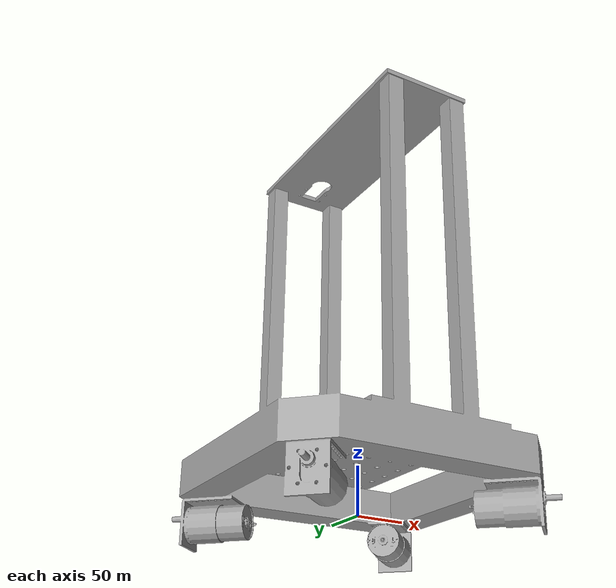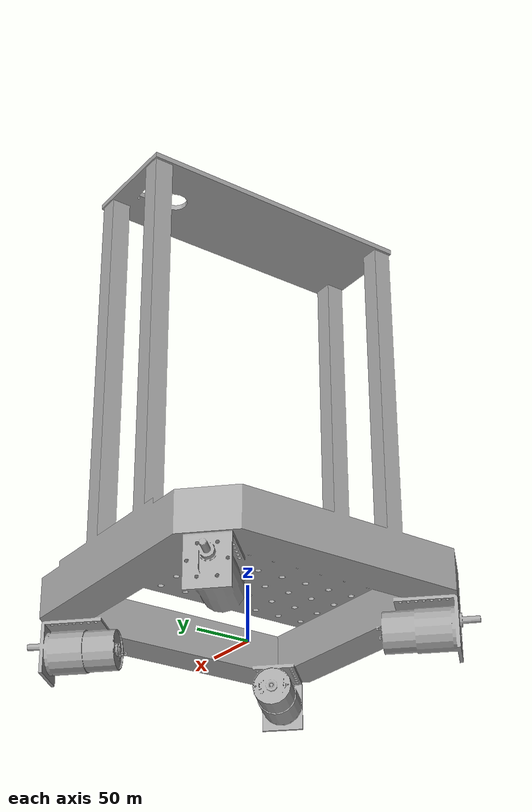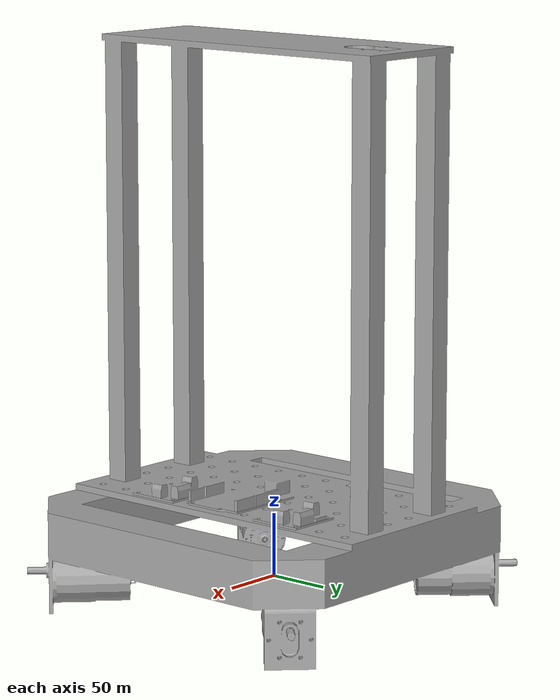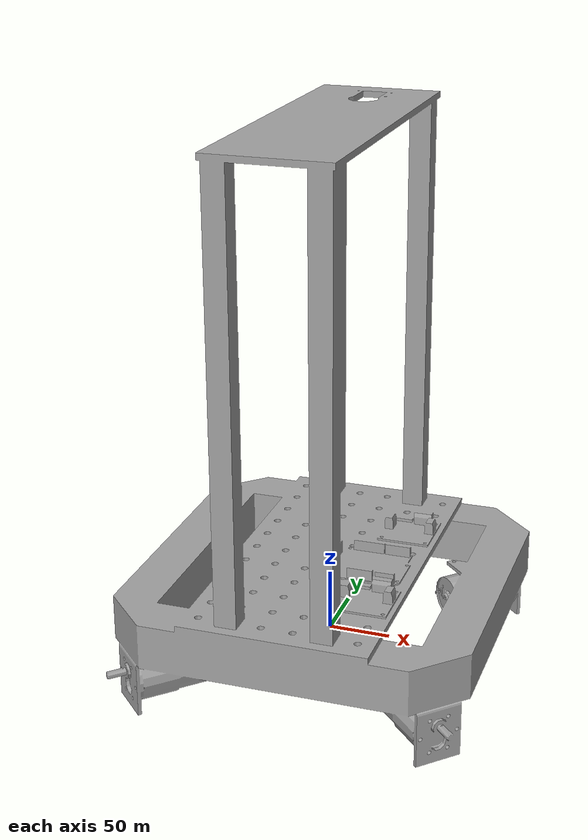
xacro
<?xml version="1.0"?>

<robot xmlns:xacro="http://www.ros.org/wiki/xacro" name="omnibot">
    <xacro:include filename="$(find omnibot_description)/urdf/omnibot_gazebo.xacro"/>
    <xacro:include filename="$(find omnibot_description)/urdf/omnibot_ros2_control.xacro"/>

    <link name="base_footprint"></link>
    <joint name="base_footprint_to_base" type="fixed">
        <parent link="base_footprint"/>
        <child link="body"/>
        <origin rpy="0.0 0 0" xyz="0 0 0"/>
    </joint>
    <link name="body">
        <visual>
            <origin xyz="0 0 0" rpy="0 -0 0"/>
            <geometry>
                <mesh filename="package://omnibot_description/meshes/body.stl"/>
            </geometry>
            <material name="body_material">
                <color rgba="0.64705882352941179736 0.64705882352941179736 0.64705882352941179736 1.0"/>
            </material>
        </visual>
        <collision>
            <origin xyz="0 0 0" rpy="0 -0 0"/>
            <geometry>
                <mesh filename="package://omnibot_description/meshes/body.stl"/>
            </geometry>
        </collision>
        <inertial>
            <origin xyz="7.1233155389013862202e-17 1.0317988916383663065e-16 0.021568658951857794942" rpy="0 0 0"/>
            <mass value="0.38994095962530694877"/>
            <inertia ixx="0.0016696381826671006111" ixy="0" ixz="0" iyy="0.0016696381826670969248" iyz="0"
                     izz="0.0027394769035442643849"/>
        </inertial>
    </link>

    <link name="wheel1">
        <visual>
            <origin xyz="2.0017602159194680667e-11 -1.9338658017376084286e-11 -0.012000000000003160916"
                    rpy="3.2665940403736872889e-17 1.6961582288539999394e-28 1.6530528052917844781e-44"/>
            <geometry>
                <mesh filename="package://omnibot_description/meshes/wheel1.stl"/>
            </geometry>
            <material name="wheel1_material">
                <color rgba="0.91764705882352937127 0.91764705882352937127 0.91764705882352937127 1.0"/>
            </material>
        </visual>
        <collision>
            <origin xyz="2.0017602159194680667e-11 -1.9338658017376084286e-11 -0.012000000000003160916"
                    rpy="3.2665940403736872889e-17 1.6961582288539999394e-28 1.6530528052917844781e-44"/>
            <geometry>
                <mesh filename="package://omnibot_description/meshes/wheel1.stl"/>
            </geometry>
        </collision>
        <inertial>
            <origin xyz="0 0 0" rpy="0 0 0"/>
            <mass value="0"/>
            <inertia ixx="0" ixy="0" ixz="0" iyy="0" iyz="0" izz="0"/>
        </inertial>
    </link>

    <link name="roller_1">
        <visual>
            <origin xyz="-1.3877787807814456755e-17 0 -3.4694469519536141888e-18"
                    rpy="4.8313597930808343815e-17 1.0202896120757522617e-17 -1.4240636807574894245e-17"/>
            <geometry>
                <mesh filename="package://omnibot_description/meshes/roller.stl"/>
            </geometry>
            <material name="roller_material">
                <color rgba="0.098039215686274508443 0.098039215686274508443 0.098039215686274508443 1.0"/>
            </material>
        </visual>
        <collision>
            <origin xyz="-1.3877787807814456755e-17 0 -3.4694469519536141888e-18"
                    rpy="4.8313597930808343815e-17 1.0202896120757522617e-17 -1.4240636807574894245e-17"/>
            <geometry>
                <mesh filename="package://omnibot_description/meshes/roller.stl"/>
            </geometry>
        </collision>
        <inertial>
            <origin xyz="4.0756108237236490763e-11 8.4957103277464551344e-11 2.4283846002799543793e-11" rpy="0 0 0"/>
            <mass value="0.0037899803393768717423"/>
            <inertia ixx="1.8303635244743851546e-07" ixy="4.2716079441666248377e-16" ixz="-1.7514569914379778774e-15"
                     iyy="1.8303636075213789495e-07" iyz="-3.3429142817401113321e-15" izz="9.80970620806389343e-08"/>
        </inertial>
    </link>

    <joint name="wheel1_roller1" type="continuous">
        <origin xyz="0.021063493153990586748 0.020580326725357138418 -0.025199999101464906626"
                rpy="1.57079632679489678 -0.63003667891428682957 0.79587032999727236326"/>
        <parent link="wheel1"/>
        <child link="roller_1"/>
        <axis xyz="0 0 1"/>
        <limit effort="1" velocity="20"/>
        <joint_properties friction="0.0"/>
    </joint>

    <link name="roller_2">
        <visual>
            <origin xyz="2.7755575615628913511e-17 1.3877787807814456755e-17 -3.4694469519536141888e-18"
                    rpy="-1.8534098844522500887e-18 1.0604467117226704221e-17 -4.5203913841863426438e-18"/>
            <geometry>
                <mesh filename="package://omnibot_description/meshes/roller.stl"/>
            </geometry>
            <material name="roller_material">
                <color rgba="0.098039215686274508443 0.098039215686274508443 0.098039215686274508443 1.0"/>
            </material>
        </visual>
        <collision>
            <origin xyz="2.7755575615628913511e-17 1.3877787807814456755e-17 -3.4694469519536141888e-18"
                    rpy="-1.8534098844522500887e-18 1.0604467117226704221e-17 -4.5203913841863426438e-18"/>
            <geometry>
                <mesh filename="package://omnibot_description/meshes/roller.stl"/>
            </geometry>
        </collision>
        <inertial>
            <origin xyz="4.0756149870599927131e-11 8.4957117155252333309e-11 2.4283846002799540562e-11" rpy="0 0 0"/>
            <mass value="0.0037899803393768717423"/>
            <inertia ixx="1.8303635244743851546e-07" ixy="4.2716080718326359577e-16" ixz="-1.7514569788113203449e-15"
                     iyy="1.8303636075213773613e-07" iyz="-3.3429142996340814812e-15" izz="9.80970620806389343e-08"/>
        </inertial>
    </link>

    <joint name="wheel1_roller2" type="continuous">
        <origin xyz="-0.0072913391920867709484 0.028531683499468909332 -0.02519999910146487887"
                rpy="1.570796326794896558 -1.0642465970120684737 1.8430678811938705497"/>
        <parent link="wheel1"/>
        <child link="roller_2"/>
        <axis xyz="0 0 1"/>
        <limit effort="1" velocity="20"/>
        <joint_properties friction="0.0"/>
    </joint>

    <link name="roller_3">
        <visual>
            <origin xyz="2.7755575615628913511e-17 6.9388939039072283776e-18 8.6736173798840354721e-19"
                    rpy="5.0301014281968001418e-17 3.251271293192914257e-17 6.8406319465281909424e-17"/>
            <geometry>
                <mesh filename="package://omnibot_description/meshes/roller.stl"/>
            </geometry>
            <material name="roller_material">
                <color rgba="0.098039215686274508443 0.098039215686274508443 0.098039215686274508443 1.0"/>
            </material>
        </visual>
        <collision>
            <origin xyz="2.7755575615628913511e-17 6.9388939039072283776e-18 8.6736173798840354721e-19"
                    rpy="5.0301014281968001418e-17 3.251271293192914257e-17 6.8406319465281909424e-17"/>
            <geometry>
                <mesh filename="package://omnibot_description/meshes/roller.stl"/>
            </geometry>
        </collision>
        <inertial>
            <origin xyz="4.0756149870599927131e-11 8.4957110216358429402e-11 2.4283850339608240197e-11" rpy="0 0 0"/>
            <mass value="0.0037899803393768717423"/>
            <inertia ixx="1.8303635244743851546e-07" ixy="4.2716082470286377858e-16" ixz="-1.7514569839231208669e-15"
                     iyy="1.8303636075213778907e-07" iyz="-3.3429143052564406697e-15" izz="9.809706208063898724e-08"/>
        </inertial>
    </link>

    <joint name="wheel1_roller3" type="continuous">
        <origin xyz="-0.02835483232605973819 0.0079513567547731638097 -0.025199999101464934381"
                rpy="1.570796326794896558 0.97038694955970605793 2.8902654323904672928"/>
        <parent link="wheel1"/>
        <child link="roller_3"/>
        <axis xyz="0 0 1"/>
        <limit effort="1" velocity="20"/>
        <joint_properties friction="0.0"/>
    </joint>

    <link name="roller_4">
        <visual>
            <origin xyz="-1.3877787807814456755e-17 0 -1.7347234759768070944e-18"
                    rpy="-8.2550672770337265537e-17 -3.1582354597863147868e-17 1.7399468565294474442e-17"/>
            <geometry>
                <mesh filename="package://omnibot_description/meshes/roller.stl"/>
            </geometry>
            <material name="roller_material">
                <color rgba="0.098039215686274508443 0.098039215686274508443 0.098039215686274508443 1.0"/>
            </material>
        </visual>
        <collision>
            <origin xyz="-1.3877787807814456755e-17 0 -1.7347234759768070944e-18"
                    rpy="-8.2550672770337265537e-17 -3.1582354597863147868e-17 1.7399468565294474442e-17"/>
            <geometry>
                <mesh filename="package://omnibot_description/meshes/roller.stl"/>
            </geometry>
        </collision>
        <inertial>
            <origin xyz="4.0756108237236497225e-11 8.4957103277464538419e-11 2.4283847737523010076e-11" rpy="0 0 0"/>
            <mass value="0.0037899803393768717423"/>
            <inertia ixx="1.8303635244743851546e-07" ixy="4.2716079610954383618e-16" ixz="-1.7514569719094518423e-15"
                     iyy="1.8303636075213778907e-07" iyz="-3.3429143185304307558e-15" izz="9.80970620806389343e-08"/>
        </inertial>
    </link>

    <joint name="wheel1_roller4" type="continuous">
        <origin xyz="-0.021063493113955417124 -0.020580326764034477527 -0.025199999101464934381"
                rpy="1.570796326794896558 0.63003667891428616343 -2.3457223235925215299"/>
        <parent link="wheel1"/>
        <child link="roller_4"/>
        <axis xyz="0 0 1"/>
        <limit effort="1" velocity="20"/>
        <joint_properties friction="0.0"/>
    </joint>

    <link name="roller_5">
        <visual>
            <origin xyz="0 -6.9388939039072283776e-18 3.4694469519536141888e-18"
                    rpy="3.3698767856153982616e-17 1.0604467117226704221e-17 1.9618948495536108714e-18"/>
            <geometry>
                <mesh filename="package://omnibot_description/meshes/roller.stl"/>
            </geometry>
            <material name="roller_material">
                <color rgba="0.098039215686274508443 0.098039215686274508443 0.098039215686274508443 1.0"/>
            </material>
        </visual>
        <collision>
            <origin xyz="0 -6.9388939039072283776e-18 3.4694469519536141888e-18"
                    rpy="3.3698767856153982616e-17 1.0604467117226704221e-17 1.9618948495536108714e-18"/>
            <geometry>
                <mesh filename="package://omnibot_description/meshes/roller.stl"/>
            </geometry>
        </collision>
        <inertial>
            <origin xyz="4.0756122115024311502e-11 8.4957096338570634512e-11 2.42838529416934477e-11" rpy="0 0 0"/>
            <mass value="0.0037899803393768717423"/>
            <inertia ixx="1.8303635244743851546e-07" ixy="4.2716080772658902975e-16" ixz="-1.7514569758691322535e-15"
                     iyy="1.8303636075213778907e-07" iyz="-3.3429142981308593003e-15" izz="9.80970620806389343e-08"/>
        </inertial>
    </link>

    <joint name="wheel1_roller5" type="continuous">
        <origin xyz="0.0072913392321219683279 -0.028531683538146258849 -0.025199999101464906626"
                rpy="1.57079632679489678 1.0642465970120684737 -1.2985247723959227883"/>
        <parent link="wheel1"/>
        <child link="roller_5"/>
        <axis xyz="0 0 1"/>
        <limit effort="1" velocity="20"/>
        <joint_properties friction="0.0"/>
    </joint>

    <link name="roller_6">
        <visual>
            <origin xyz="2.7755575615628913511e-17 -1.3877787807814456755e-17 8.6736173798840354721e-19"
                    rpy="1.1348307307387470587e-17 -2.4396012508985263894e-17 5.3536638798027002645e-17"/>
            <geometry>
                <mesh filename="package://omnibot_description/meshes/roller.stl"/>
            </geometry>
            <material name="roller_material">
                <color rgba="0.098039215686274508443 0.098039215686274508443 0.098039215686274508443 1.0"/>
            </material>
        </visual>
        <collision>
            <origin xyz="2.7755575615628913511e-17 -1.3877787807814456755e-17 8.6736173798840354721e-19"
                    rpy="1.1348307307387470587e-17 -2.4396012508985263894e-17 5.3536638798027002645e-17"/>
            <geometry>
                <mesh filename="package://omnibot_description/meshes/roller.stl"/>
            </geometry>
        </collision>
        <inertial>
            <origin xyz="4.0756149870599952981e-11 8.4957089399676704756e-11 2.4283850339608224041e-11" rpy="0 0 0"/>
            <mass value="0.0037899803393768717423"/>
            <inertia ixx="1.8303635244743851546e-07" ixy="4.2716086838070390269e-16" ixz="-1.7514569601315299549e-15"
                     iyy="1.8303636075213768319e-07" iyz="-3.3429142966299291546e-15" izz="9.8097062080638881361e-08"/>
        </inertial>
    </link>

    <joint name="wheel1_roller6" type="continuous">
        <origin xyz="0.028354832366094942508 -0.0079513567934505115925 -0.02519999910146487887"
                rpy="-1.57079632679489678 0.97038694955970650202 2.8902654323904677369"/>
        <parent link="wheel1"/>
        <child link="roller_6"/>
        <axis xyz="0 0 1"/>
        <limit effort="1" velocity="20"/>
        <joint_properties friction="0.0"/>
    </joint>

    <link name="roller_7">
        <visual>
            <origin xyz="-2.7755575615628913511e-17 1.3877787807814456755e-17 5.2041704279304212832e-18"
                    rpy="1.8576235027372254353e-17 1.0922784625315150076e-17 -1.2166858698432690386e-17"/>
            <geometry>
                <mesh filename="package://omnibot_description/meshes/roller.stl"/>
            </geometry>
            <material name="roller_material">
                <color rgba="0.098039215686274508443 0.098039215686274508443 0.098039215686274508443 1.0"/>
            </material>
        </visual>
        <collision>
            <origin xyz="-2.7755575615628913511e-17 1.3877787807814456755e-17 5.2041704279304212832e-18"
                    rpy="1.8576235027372254353e-17 1.0922784625315150076e-17 -1.2166858698432690386e-17"/>
            <geometry>
                <mesh filename="package://omnibot_description/meshes/roller.stl"/>
            </geometry>
        </collision>
        <inertial>
            <origin xyz="4.0756094359448695873e-11 8.4957117155252346234e-11 2.4283854676416913983e-11" rpy="0 0 0"/>
            <mass value="0.0037899803393768717423"/>
            <inertia ixx="1.8303635244743840958e-07" ixy="4.2716081650997702364e-16" ixz="-1.7514569755664719622e-15"
                     iyy="1.8303636075213778907e-07" iyz="-3.3429142902578996707e-15" izz="9.8097062080638907831e-08"/>
        </inertial>
    </link>

    <joint name="wheel1_roller7" type="continuous">
        <origin xyz="-0.021063534795607546934 0.020580268704085871723 -0.010000000513228704535"
                rpy="1.570796326794896558 0.99324701318442509823 -0.79586931499755353414"/>
        <parent link="wheel1"/>
        <child link="roller_7"/>
        <axis xyz="0 0 1"/>
        <limit effort="1" velocity="20"/>
        <joint_properties friction="0.0"/>
    </joint>

    <link name="roller_8">
        <visual>
            <origin xyz="0 0 -3.4694469519536141888e-18"
                    rpy="2.1516164593766474651e-17 -1.6403947067203599377e-17 1.5270275074116294873e-17"/>
            <geometry>
                <mesh filename="package://omnibot_description/meshes/roller.stl"/>
            </geometry>
            <material name="roller_material">
                <color rgba="0.098039215686274508443 0.098039215686274508443 0.098039215686274508443 1.0"/>
            </material>
        </visual>
        <collision>
            <origin xyz="0 0 -3.4694469519536141888e-18"
                    rpy="2.1516164593766474651e-17 -1.6403947067203599377e-17 1.5270275074116294873e-17"/>
            <geometry>
                <mesh filename="package://omnibot_description/meshes/roller.stl"/>
            </geometry>
        </collision>
        <inertial>
            <origin xyz="4.0756122115024311502e-11 8.4957103277464525495e-11 2.4283846002799543793e-11" rpy="0 0 0"/>
            <mass value="0.0037899803393768717423"/>
            <inertia ixx="1.8303635244743851546e-07" ixy="4.2716081033496638894e-16" ixz="-1.751456968894648513e-15"
                     iyy="1.8303636075213773613e-07" iyz="-3.3429142993485670817e-15" izz="9.80970620806389343e-08"/>
        </inertial>
    </link>

    <joint name="wheel1_roller8" type="continuous">
        <origin xyz="0.0072912681434010775255 0.028531690586202942267 -0.010000000513228732291"
                rpy="1.57079632679489678 0.98661181153161181534 -1.8430668661941522757"/>
        <parent link="wheel1"/>
        <child link="roller_8"/>
        <axis xyz="0 0 1"/>
        <limit effort="1" velocity="20"/>
        <joint_properties friction="0.0"/>
    </joint>

    <link name="roller_9">
        <visual>
            <origin xyz="1.7347234759768070944e-18 0 5.2041704279304212832e-18"
                    rpy="-5.7596626691863172499e-17 8.2240143318525463857e-18 1.595066194716236105e-17"/>
            <geometry>
                <mesh filename="package://omnibot_description/meshes/roller.stl"/>
            </geometry>
            <material name="roller_material">
                <color rgba="0.098039215686274508443 0.098039215686274508443 0.098039215686274508443 1.0"/>
            </material>
        </visual>
        <collision>
            <origin xyz="1.7347234759768070944e-18 0 5.2041704279304212832e-18"
                    rpy="-5.7596626691863172499e-17 8.2240143318525463857e-18 1.595066194716236105e-17"/>
            <geometry>
                <mesh filename="package://omnibot_description/meshes/roller.stl"/>
            </geometry>
        </collision>
        <inertial>
            <origin xyz="4.0756123849747787479e-11 8.4957103277464551344e-11 2.4283854676416913983e-11" rpy="0 0 0"/>
            <mass value="0.0037899803393768717423"/>
            <inertia ixx="1.8303635244743851546e-07" ixy="4.2716081033502718053e-16" ixz="-1.7514569749483572389e-15"
                     iyy="1.8303636075213789495e-07" iyz="-3.3429143212483492417e-15" izz="9.80970620806389343e-08"/>
        </inertial>
    </link>

    <joint name="wheel1_roller9" type="continuous">
        <origin xyz="0.028354802959026179782 0.0079514218627783975202 -0.010000000513228732291"
                rpy="-1.570796326794896558 3.3991120367872372081e-16 0.2513282361990437086"/>
        <parent link="wheel1"/>
        <child link="roller_9"/>
        <axis xyz="0 0 1"/>
        <limit effort="1" velocity="20"/>
        <joint_properties friction="0.0"/>
    </joint>

    <link name="roller_10">
        <visual>
            <origin xyz="1.3877787807814456755e-17 0 -1.7347234759768070944e-18"
                    rpy="-4.2387421735465487084e-17 1.0922784625315150076e-17 -9.3408557715693115825e-19"/>
            <geometry>
                <mesh filename="package://omnibot_description/meshes/roller.stl"/>
            </geometry>
            <material name="roller_material">
                <color rgba="0.098039215686274508443 0.098039215686274508443 0.098039215686274508443 1.0"/>
            </material>
        </visual>
        <collision>
            <origin xyz="1.3877787807814456755e-17 0 -1.7347234759768070944e-18"
                    rpy="-4.2387421735465487084e-17 1.0922784625315150076e-17 -9.3408557715693115825e-19"/>
            <geometry>
                <mesh filename="package://omnibot_description/meshes/roller.stl"/>
            </geometry>
        </collision>
        <inertial>
            <origin xyz="4.0756135992812112854e-11 8.4957103277464538419e-11 2.4283847737523013307e-11" rpy="0 0 0"/>
            <mass value="0.0037899803393768717423"/>
            <inertia ixx="1.8303635244743840958e-07" ixy="4.2716080673725795952e-16" ixz="-1.751456978441624626e-15"
                     iyy="1.8303636075213778907e-07" iyz="-3.3429143184311715435e-15" izz="9.80970620806389343e-08"/>
        </inertial>
    </link>

    <joint name="wheel1_roller10" type="continuous">
        <origin xyz="0.021063534835642744314 -0.02058026874276322124 -0.010000000513228760046"
                rpy="1.570796326794896558 -0.99324701318442520925 2.3457233385922400259"/>
        <parent link="wheel1"/>
        <child link="roller_10"/>
        <axis xyz="0 0 1"/>
        <limit effort="1" velocity="20"/>
        <joint_properties friction="0.0"/>
    </joint>

    <link name="roller_11">
        <visual>
            <origin xyz="2.7755575615628913511e-17 0 0"
                    rpy="-3.1584069176262389885e-17 1.4439558933859662794e-17 -6.895535096272413729e-18"/>
            <geometry>
                <mesh filename="package://omnibot_description/meshes/roller.stl"/>
            </geometry>
            <material name="roller_material">
                <color rgba="0.098039215686274508443 0.098039215686274508443 0.098039215686274508443 1.0"/>
            </material>
        </visual>
        <collision>
            <origin xyz="2.7755575615628913511e-17 0 0"
                    rpy="-3.1584069176262389885e-17 1.4439558933859662794e-17 -6.895535096272413729e-18"/>
            <geometry>
                <mesh filename="package://omnibot_description/meshes/roller.stl"/>
            </geometry>
        </collision>
        <inertial>
            <origin xyz="4.0756149870599920669e-11 8.4957103277464525495e-11 2.4283849472246489284e-11" rpy="0 0 0"/>
            <mass value="0.0037899803393768717423"/>
            <inertia ixx="1.8303635244743846252e-07" ixy="4.2716080796679899963e-16" ixz="-1.7514569732362549454e-15"
                     iyy="1.8303636075213773613e-07" iyz="-3.3429143086732145814e-15" izz="9.80970620806389343e-08"/>
        </inertial>
    </link>

    <joint name="wheel1_roller11" type="continuous">
        <origin xyz="-0.0072912681033658471863 -0.028531690624880284846 -0.010000000513228760046"
                rpy="1.57079632679489678 -0.98661181153161203738 1.2985257873956417285"/>
        <parent link="wheel1"/>
        <child link="roller_11"/>
        <axis xyz="0 0 1"/>
        <limit effort="1" velocity="20"/>
        <joint_properties friction="0.0"/>
    </joint>

    <link name="roller_12">
        <visual>
            <origin xyz="6.9388939039072283776e-18 0 1.3010426069826053208e-18"
                    rpy="-2.5118817816272677034e-18 -1.6181263758253363925e-18 9.6984171629855410221e-19"/>
            <geometry>
                <mesh filename="package://omnibot_description/meshes/roller.stl"/>
            </geometry>
            <material name="roller_material">
                <color rgba="0.098039215686274508443 0.098039215686274508443 0.098039215686274508443 1.0"/>
            </material>
        </visual>
        <collision>
            <origin xyz="6.9388939039072283776e-18 0 1.3010426069826053208e-18"
                    rpy="-2.5118817816272677034e-18 -1.6181263758253363925e-18 9.6984171629855410221e-19"/>
            <geometry>
                <mesh filename="package://omnibot_description/meshes/roller.stl"/>
            </geometry>
        </collision>
        <inertial>
            <origin xyz="4.0756129053918215409e-11 8.4957103277464525495e-11 2.4283850773289096267e-11" rpy="0 0 0"/>
            <mass value="0.0037899803393768717423"/>
            <inertia ixx="1.8303635244743851546e-07" ixy="4.2716081002971173128e-16" ixz="-1.7514569701489590459e-15"
                     iyy="1.8303636075213773613e-07" iyz="-3.3429143096072791413e-15" izz="9.8097062080638907831e-08"/>
        </inertial>
    </link>

    <joint name="wheel1_roller12" type="continuous">
        <origin xyz="-0.028354802918990978933 -0.0079514219014556724446 -0.010000000513228760046"
                rpy="1.57079632679489678 0.080869265947467836031 0.25132823619904404167"/>
        <parent link="wheel1"/>
        <child link="roller_12"/>
        <axis xyz="0 0 1"/>
        <limit effort="1" velocity="20"/>
        <joint_properties friction="0.0"/>
    </joint>

    <joint name="wheel12" type="continuous">
        <origin xyz="-0.10512583302491984583 -0.060694427995720917624 -0.018273297269524119146"
                rpy="-2.6179938779914952995 -1.570796326794896558 0"/>
        <parent link="body"/>
        <child link="wheel1"/>
        <axis xyz="0 0 1"/>
        <limit effort="1" velocity="20"/>
        <joint_properties friction="0.0"/>
    </joint>

    <link name="wheel1_2">
        <visual>
            <origin xyz="2.0017602159194680667e-11 -1.9338656401070191833e-11 -0.012000000000003147038"
                    rpy="1.7791772260398229456e-17 1.6961582288539999394e-28 1.4488936099950095181e-44"/>
            <geometry>
                <mesh filename="package://omnibot_description/meshes/wheel1.stl"/>
            </geometry>
            <material name="wheel1_material">
                <color rgba="0.91764705882352937127 0.91764705882352937127 0.91764705882352937127 1.0"/>
            </material>
        </visual>
        <collision>
            <origin xyz="2.0017602159194680667e-11 -1.9338656401070191833e-11 -0.012000000000003147038"
                    rpy="1.7791772260398229456e-17 1.6961582288539999394e-28 1.4488936099950095181e-44"/>
            <geometry>
                <mesh filename="package://omnibot_description/meshes/wheel1.stl"/>
            </geometry>
        </collision>
        <inertial>
            <origin xyz="0 0 0" rpy="0 0 0"/>
            <mass value="0"/>
            <inertia ixx="0" ixy="0" ixz="0" iyy="0" iyz="0" izz="0"/>
        </inertial>
    </link>

    <link name="roller_13">
        <visual>
            <origin xyz="0 3.0357660829594124152e-18 -1.1275702593849246114e-17"
                    rpy="1.4801210821466161925e-17 -3.2154076170664217384e-17 -7.4697855477196138984e-18"/>
            <geometry>
                <mesh filename="package://omnibot_description/meshes/roller.stl"/>
            </geometry>
            <material name="roller_material">
                <color rgba="0.098039215686274508443 0.098039215686274508443 0.098039215686274508443 1.0"/>
            </material>
        </visual>
        <collision>
            <origin xyz="0 3.0357660829594124152e-18 -1.1275702593849246114e-17"
                    rpy="1.4801210821466161925e-17 -3.2154076170664217384e-17 -7.4697855477196138984e-18"/>
            <geometry>
                <mesh filename="package://omnibot_description/meshes/roller.stl"/>
            </geometry>
        </collision>
        <inertial>
            <origin xyz="4.0756122115024311502e-11 8.4957106313230621379e-11 2.4283838196543905128e-11" rpy="0 0 0"/>
            <mass value="0.0037899803393768717423"/>
            <inertia ixx="1.8303635244743851546e-07" ixy="4.271608063406695779e-16" ixz="-1.7514569757286475648e-15"
                     iyy="1.8303636075213778907e-07" iyz="-3.3429143061564761368e-15" izz="9.809706208063898724e-08"/>
        </inertial>
    </link>

    <joint name="wheel2_roller1" type="continuous">
        <origin xyz="0.028354802959026179782 0.0079514218627784027243 -0.010000000513228718413"
                rpy="-1.5707963267948983344 1.4677789384896071656 0.251328236199043209"/>
        <parent link="wheel1_2"/>
        <child link="roller_13"/>
        <axis xyz="0 0 1"/>
        <limit effort="1" velocity="20"/>
        <joint_properties friction="0.0"/>
    </joint>

    <link name="roller_14">
        <visual>
            <origin xyz="2.7755575615628913511e-17 6.9388939039072283776e-18 -3.4694469519536141888e-18"
                    rpy="6.3092036550320982382e-17 -2.1227792715071714022e-17 6.3033836454500490105e-17"/>
            <geometry>
                <mesh filename="package://omnibot_description/meshes/roller.stl"/>
            </geometry>
            <material name="roller_material">
                <color rgba="0.098039215686274508443 0.098039215686274508443 0.098039215686274508443 1.0"/>
            </material>
        </visual>
        <collision>
            <origin xyz="2.7755575615628913511e-17 6.9388939039072283776e-18 -3.4694469519536141888e-18"
                    rpy="6.3092036550320982382e-17 -2.1227792715071714022e-17 6.3033836454500490105e-17"/>
            <geometry>
                <mesh filename="package://omnibot_description/meshes/roller.stl"/>
            </geometry>
        </collision>
        <inertial>
            <origin xyz="4.0756149870599927131e-11 8.4957110216358455251e-11 2.4283846002799547024e-11" rpy="0 0 0"/>
            <mass value="0.0037899803393768717423"/>
            <inertia ixx="1.8303635244743846252e-07" ixy="4.2716083935184793806e-16" ixz="-1.7514569722847129749e-15"
                     iyy="1.8303636075213789495e-07" iyz="-3.3429142963266586794e-15" izz="9.80970620806389343e-08"/>
        </inertial>
    </link>

    <joint name="wheel2_roller2" type="continuous">
        <origin xyz="0.007291268143401061913 0.028531690586202963084 -0.010000000513228746168"
                rpy="-1.5707963267948950037 -1.5491165045229537967 1.2985257873956401742"/>
        <parent link="wheel1_2"/>
        <child link="roller_14"/>
        <axis xyz="0 0 1"/>
        <limit effort="1" velocity="20"/>
        <joint_properties friction="0.0"/>
    </joint>

    <link name="roller_15">
        <visual>
            <origin xyz="-6.9388939039072283776e-18 0 -1.0408340855860842566e-17"
                    rpy="5.8370656148448449208e-17 -4.2840387043449254456e-17 -6.6244170159847150166e-17"/>
            <geometry>
                <mesh filename="package://omnibot_description/meshes/roller.stl"/>
            </geometry>
            <material name="roller_material">
                <color rgba="0.098039215686274508443 0.098039215686274508443 0.098039215686274508443 1.0"/>
            </material>
        </visual>
        <collision>
            <origin xyz="-6.9388939039072283776e-18 0 -1.0408340855860842566e-17"
                    rpy="5.8370656148448449208e-17 -4.2840387043449254456e-17 -6.6244170159847150166e-17"/>
            <geometry>
                <mesh filename="package://omnibot_description/meshes/roller.stl"/>
            </geometry>
        </collision>
        <inertial>
            <origin xyz="4.0756115176130414057e-11 8.4957103277464538419e-11 2.4283839063905643117e-11" rpy="0 0 0"/>
            <mass value="0.0037899803393768717423"/>
            <inertia ixx="1.8303635244743862134e-07" ixy="4.2716080207905990286e-16" ixz="-1.7514569756791652784e-15"
                     iyy="1.8303636075213778907e-07" iyz="-3.3429142742462246111e-15" izz="9.8097062080638907831e-08"/>
        </inertial>
    </link>

    <joint name="wheel2_roller3" type="continuous">
        <origin xyz="-0.021063534795607543465 0.020580268704085920295 -0.010000000513228690657"
                rpy="1.570796326794896558 -0.11503715271799130893 -0.79586931499755364516"/>
        <parent link="wheel1_2"/>
        <child link="roller_15"/>
        <axis xyz="0 0 1"/>
        <limit effort="1" velocity="20"/>
        <joint_properties friction="0.0"/>
    </joint>

    <link name="roller_16">
        <visual>
            <origin xyz="0 0 5.6378512969246230568e-18"
                    rpy="5.7268911782108241648e-17 -6.5981123338700148002e-17 -2.4567990984408565117e-17"/>
            <geometry>
                <mesh filename="package://omnibot_description/meshes/roller.stl"/>
            </geometry>
            <material name="roller_material">
                <color rgba="0.098039215686274508443 0.098039215686274508443 0.098039215686274508443 1.0"/>
            </material>
        </visual>
        <collision>
            <origin xyz="0 0 5.6378512969246230568e-18"
                    rpy="5.7268911782108241648e-17 -6.5981123338700148002e-17 -2.4567990984408565117e-17"/>
            <geometry>
                <mesh filename="package://omnibot_description/meshes/roller.stl"/>
            </geometry>
        </collision>
        <inertial>
            <origin xyz="4.075612211502430504e-11 8.4957103277464538419e-11 2.4283855110097799133e-11" rpy="0 0 0"/>
            <mass value="0.0037899803393768717423"/>
            <inertia ixx="1.8303635244743846252e-07" ixy="4.2716081034569765826e-16" ixz="-1.7514569501021677649e-15"
                     iyy="1.8303636075213778907e-07" iyz="-3.3429142936202540128e-15" izz="9.80970620806389343e-08"/>
        </inertial>
    </link>

    <joint name="wheel2_roller4" type="continuous">
        <origin xyz="-0.028354802918990982402 -0.0079514219014556759141 -0.010000000513228718413"
                rpy="1.5707963267948954478 1.4677789384896069436 0.25132823619904315349"/>
        <parent link="wheel1_2"/>
        <child link="roller_16"/>
        <axis xyz="0 0 1"/>
        <limit effort="1" velocity="20"/>
        <joint_properties friction="0.0"/>
    </joint>

    <link name="roller_17">
        <visual>
            <origin xyz="2.7755575615628913511e-17 0 0"
                    rpy="-2.6090100836621724074e-17 -3.0062742535195061203e-17 -1.3397760285791765036e-17"/>
            <geometry>
                <mesh filename="package://omnibot_description/meshes/roller.stl"/>
            </geometry>
            <material name="roller_material">
                <color rgba="0.098039215686274508443 0.098039215686274508443 0.098039215686274508443 1.0"/>
            </material>
        </visual>
        <collision>
            <origin xyz="2.7755575615628913511e-17 0 0"
                    rpy="-2.6090100836621724074e-17 -3.0062742535195061203e-17 -1.3397760285791765036e-17"/>
            <geometry>
                <mesh filename="package://omnibot_description/meshes/roller.stl"/>
            </geometry>
        </collision>
        <inertial>
            <origin xyz="4.0756149870599933593e-11 8.4957103277464551344e-11 2.4283849472246486053e-11" rpy="0 0 0"/>
            <mass value="0.0037899803393768717423"/>
            <inertia ixx="1.8303635244743851546e-07" ixy="4.271608144483480645e-16" ixz="-1.7514569676764786563e-15"
                     iyy="1.8303636075213789495e-07" iyz="-3.3429143174295631352e-15" izz="9.8097062080638907831e-08"/>
        </inertial>
    </link>

    <joint name="wheel2_roller5" type="continuous">
        <origin xyz="-0.0072912681033658575946 -0.028531690624880329948 -0.01000000051322880168"
                rpy="-1.5707963267948970021 1.5491165045229551289 -1.8430668661941511655"/>
        <parent link="wheel1_2"/>
        <child link="roller_17"/>
        <axis xyz="0 0 1"/>
        <limit effort="1" velocity="20"/>
        <joint_properties friction="0.0"/>
    </joint>

    <link name="roller_18">
        <visual>
            <origin xyz="4.7704895589362195096e-18 0 3.4694469519536141888e-18"
                    rpy="2.0941469269023866673e-17 -4.7155288459325374131e-17 -3.8742920020438843707e-17"/>
            <geometry>
                <mesh filename="package://omnibot_description/meshes/roller.stl"/>
            </geometry>
            <material name="roller_material">
                <color rgba="0.098039215686274508443 0.098039215686274508443 0.098039215686274508443 1.0"/>
            </material>
        </visual>
        <collision>
            <origin xyz="4.7704895589362195096e-18 0 3.4694469519536141888e-18"
                    rpy="2.0941469269023866673e-17 -4.7155288459325374131e-17 -3.8742920020438843707e-17"/>
            <geometry>
                <mesh filename="package://omnibot_description/meshes/roller.stl"/>
            </geometry>
        </collision>
        <inertial>
            <origin xyz="4.0756126885513876901e-11 8.4957103277464538419e-11 2.4283852941693450931e-11" rpy="0 0 0"/>
            <mass value="0.0037899803393768717423"/>
            <inertia ixx="1.8303635244743862134e-07" ixy="4.2716079749521277539e-16" ixz="-1.7514569692322610617e-15"
                     iyy="1.8303636075213778907e-07" iyz="-3.3429143059667460172e-15" izz="9.80970620806389343e-08"/>
        </inertial>
    </link>

    <joint name="wheel2_roller6" type="continuous">
        <origin xyz="0.021063534835642692272 -0.020580268742763259404 -0.010000000513228746168"
                rpy="1.570796326794896558 0.11503715271799126729 2.3457233385922395819"/>
        <parent link="wheel1_2"/>
        <child link="roller_18"/>
        <axis xyz="0 0 1"/>
        <limit effort="1" velocity="20"/>
        <joint_properties friction="0.0"/>
    </joint>

    <link name="roller_19">
        <visual>
            <origin xyz="-2.7755575615628913511e-17 0 1.1275702593849246114e-17"
                    rpy="-1.5674458388683320269e-17 -2.4544754241986398247e-17 1.9226701600316250019e-17"/>
            <geometry>
                <mesh filename="package://omnibot_description/meshes/roller.stl"/>
            </geometry>
            <material name="roller_material">
                <color rgba="0.098039215686274508443 0.098039215686274508443 0.098039215686274508443 1.0"/>
            </material>
        </visual>
        <collision>
            <origin xyz="-2.7755575615628913511e-17 0 1.1275702593849246114e-17"
                    rpy="-1.5674458388683320269e-17 -2.4544754241986398247e-17 1.9226701600316250019e-17"/>
            <geometry>
                <mesh filename="package://omnibot_description/meshes/roller.stl"/>
            </geometry>
        </collision>
        <inertial>
            <origin xyz="4.0756094359448702336e-11 8.4957103277464525495e-11 2.4283860747949083133e-11" rpy="0 0 0"/>
            <mass value="0.0037899803393768717423"/>
            <inertia ixx="1.8303635244743862134e-07" ixy="4.2716080991377521062e-16" ixz="-1.7514569705373572764e-15"
                     iyy="1.8303636075213773613e-07" iyz="-3.3429143090654200519e-15" izz="9.8097062080638907831e-08"/>
        </inertial>
    </link>

    <joint name="wheel2_roller7" type="continuous">
        <origin xyz="0.028354832366094959856 -0.0079513567934504422036 -0.025199999101464892748"
                rpy="-1.5707963267948978903 1.5361898384123144901 2.8902654323904655165"/>
        <parent link="wheel1_2"/>
        <child link="roller_19"/>
        <axis xyz="0 0 1"/>
        <limit effort="1" velocity="20"/>
        <joint_properties friction="0.0"/>
    </joint>

    <link name="roller_20">
        <visual>
            <origin xyz="-1.3877787807814456755e-17 0 0"
                    rpy="-1.1567896209487313852e-17 -2.7005778160947398534e-17 3.787924599881237004e-17"/>
            <geometry>
                <mesh filename="package://omnibot_description/meshes/roller.stl"/>
            </geometry>
            <material name="roller_material">
                <color rgba="0.098039215686274508443 0.098039215686274508443 0.098039215686274508443 1.0"/>
            </material>
        </visual>
        <collision>
            <origin xyz="-1.3877787807814456755e-17 0 0"
                    rpy="-1.1567896209487313852e-17 -2.7005778160947398534e-17 3.787924599881237004e-17"/>
            <geometry>
                <mesh filename="package://omnibot_description/meshes/roller.stl"/>
            </geometry>
        </collision>
        <inertial>
            <origin xyz="4.0756108237236497225e-11 8.4957103277464538419e-11 2.4283849472246492515e-11" rpy="0 0 0"/>
            <mass value="0.0037899803393768717423"/>
            <inertia ixx="1.8303635244743846252e-07" ixy="4.2716081970355418068e-16" ixz="-1.7514569644988420115e-15"
                     iyy="1.8303636075213778907e-07" iyz="-3.3429143121543173389e-15" izz="9.80970620806389343e-08"/>
        </inertial>
    </link>

    <joint name="wheel2_roller8" type="continuous">
        <origin xyz="0.021063493153990590218 0.020580326725357159234 -0.025199999101464864992"
                rpy="-1.570796326794896558 0.63039114187527922617 -2.3457223235925210858"/>
        <parent link="wheel1_2"/>
        <child link="roller_20"/>
        <axis xyz="0 0 1"/>
        <limit effort="1" velocity="20"/>
        <joint_properties friction="0.0"/>
    </joint>

    <link name="roller_21">
        <visual>
            <origin xyz="4.1633363423443370266e-17 1.3877787807814456755e-17 3.4694469519536141888e-18"
                    rpy="-5.714350033922817385e-17 2.1264866027007786721e-17 -1.3126201026033230905e-17"/>
            <geometry>
                <mesh filename="package://omnibot_description/meshes/roller.stl"/>
            </geometry>
            <material name="roller_material">
                <color rgba="0.098039215686274508443 0.098039215686274508443 0.098039215686274508443 1.0"/>
            </material>
        </visual>
        <collision>
            <origin xyz="4.1633363423443370266e-17 1.3877787807814456755e-17 3.4694469519536141888e-18"
                    rpy="-5.714350033922817385e-17 2.1264866027007786721e-17 -1.3126201026033230905e-17"/>
            <geometry>
                <mesh filename="package://omnibot_description/meshes/roller.stl"/>
            </geometry>
        </collision>
        <inertial>
            <origin xyz="4.0756163748387734946e-11 8.4957117155252333309e-11 2.4283852941693444469e-11" rpy="0 0 0"/>
            <mass value="0.0037899803393768717423"/>
            <inertia ixx="1.8303635244743862134e-07" ixy="4.2716078587468293668e-16" ixz="-1.7514569794867702676e-15"
                     iyy="1.8303636075213768319e-07" iyz="-3.3429143155791699751e-15" izz="9.809706208063898724e-08"/>
        </inertial>
    </link>

    <joint name="wheel2_roller9" type="continuous">
        <origin xyz="-0.0072913391920867674789 0.028531683499468937087 -0.025199999101464892748"
                rpy="1.570796326794896558 0.60077134303159707152 1.8430678811938703276"/>
        <parent link="wheel1_2"/>
        <child link="roller_21"/>
        <axis xyz="0 0 1"/>
        <limit effort="1" velocity="20"/>
        <joint_properties friction="0.0"/>
    </joint>

    <link name="roller_22">
        <visual>
            <origin xyz="-2.7755575615628913511e-17 -1.3877787807814456755e-17 -8.6736173798840354721e-18"
                    rpy="-2.5489388620019769049e-17 -4.0682999770669480414e-17 -2.8556748376214624743e-17"/>
            <geometry>
                <mesh filename="package://omnibot_description/meshes/roller.stl"/>
            </geometry>
            <material name="roller_material">
                <color rgba="0.098039215686274508443 0.098039215686274508443 0.098039215686274508443 1.0"/>
            </material>
        </visual>
        <collision>
            <origin xyz="-2.7755575615628913511e-17 -1.3877787807814456755e-17 -8.6736173798840354721e-18"
                    rpy="-2.5489388620019769049e-17 -4.0682999770669480414e-17 -2.8556748376214624743e-17"/>
            <geometry>
                <mesh filename="package://omnibot_description/meshes/roller.stl"/>
            </geometry>
        </collision>
        <inertial>
            <origin xyz="4.075609435944871526e-11 8.495708939967671768e-11 2.42838407986291094e-11" rpy="0 0 0"/>
            <mass value="0.0037899803393768717423"/>
            <inertia ixx="1.8303635244743862134e-07" ixy="4.271608137392642682e-16" ixz="-1.7514569504726933655e-15"
                     iyy="1.8303636075213768319e-07" iyz="-3.3429142949556050155e-15" izz="9.8097062080638907831e-08"/>
        </inertial>
    </link>

    <joint name="wheel2_roller10" type="continuous">
        <origin xyz="-0.021063493113955385899 -0.020580326764034432424 -0.025199999101464920503"
                rpy="-1.570796326794896558 -0.63039114187527867106 0.79587032999727180815"/>
        <parent link="wheel1_2"/>
        <child link="roller_22"/>
        <axis xyz="0 0 1"/>
        <limit effort="1" velocity="20"/>
        <joint_properties friction="0.0"/>
    </joint>

    <link name="roller_23">
        <visual>
            <origin xyz="0 0 0" rpy="2.3389431820378482229e-17 -3.2081530194401350865e-17 1.0126954574422848013e-17"/>
            <geometry>
                <mesh filename="package://omnibot_description/meshes/roller.stl"/>
            </geometry>
            <material name="roller_material">
                <color rgba="0.098039215686274508443 0.098039215686274508443 0.098039215686274508443 1.0"/>
            </material>
        </visual>
        <collision>
            <origin xyz="0 0 0" rpy="2.3389431820378482229e-17 -3.2081530194401350865e-17 1.0126954574422848013e-17"/>
            <geometry>
                <mesh filename="package://omnibot_description/meshes/roller.stl"/>
            </geometry>
        </collision>
        <inertial>
            <origin xyz="4.0756122115024311502e-11 8.4957103277464525495e-11 2.4283849472246495746e-11" rpy="0 0 0"/>
            <mass value="0.0037899803393768717423"/>
            <inertia ixx="1.8303635244743851546e-07" ixy="4.2716081058883104805e-16" ixz="-1.751456971737208994e-15"
                     iyy="1.8303636075213773613e-07" iyz="-3.3429142982610765699e-15" izz="9.80970620806389343e-08"/>
        </inertial>
    </link>

    <joint name="wheel2_roller11" type="continuous">
        <origin xyz="0.0072913392321219717973 -0.02853168353814625538 -0.025199999101464892748"
                rpy="1.570796326794896558 -0.60077134303159696049 -1.2985247723959227883"/>
        <parent link="wheel1_2"/>
        <child link="roller_23"/>
        <axis xyz="0 0 1"/>
        <limit effort="1" velocity="20"/>
        <joint_properties friction="0.0"/>
    </joint>

    <link name="roller_24">
        <visual>
            <origin xyz="2.7755575615628913511e-17 0 -1.7347234759768070944e-18"
                    rpy="-2.4986176817345924235e-18 6.9448305198499574622e-18 -1.3341701591840596834e-17"/>
            <geometry>
                <mesh filename="package://omnibot_description/meshes/roller.stl"/>
            </geometry>
            <material name="roller_material">
                <color rgba="0.098039215686274508443 0.098039215686274508443 0.098039215686274508443 1.0"/>
            </material>
        </visual>
        <collision>
            <origin xyz="2.7755575615628913511e-17 0 -1.7347234759768070944e-18"
                    rpy="-2.4986176817345924235e-18 6.9448305198499574622e-18 -1.3341701591840596834e-17"/>
            <geometry>
                <mesh filename="package://omnibot_description/meshes/roller.stl"/>
            </geometry>
        </collision>
        <inertial>
            <origin xyz="4.0756149870599933593e-11 8.4957103277464538419e-11 2.4283847737523013307e-11" rpy="0 0 0"/>
            <mass value="0.0037899803393768717423"/>
            <inertia ixx="1.8303635244743862134e-07" ixy="4.2716080648531393019e-16" ixz="-1.7514569662019406411e-15"
                     iyy="1.8303636075213778907e-07" iyz="-3.3429143054340992453e-15" izz="9.8097062080638907831e-08"/>
        </inertial>
    </link>

    <joint name="wheel2_roller12" type="continuous">
        <origin xyz="-0.02835483232605974166 0.0079513567547731586055 -0.025199999101464920503"
                rpy="1.5707963267948970021 1.536189838412314268 2.8902654323904646283"/>
        <parent link="wheel1_2"/>
        <child link="roller_24"/>
        <axis xyz="0 0 1"/>
        <limit effort="1" velocity="20"/>
        <joint_properties friction="0.0"/>
    </joint>

    <joint name="wheel2" type="continuous">
        <origin xyz="0.10512583302491967929 -0.06069442799572125069 -0.018273297269524122616"
                rpy="-0.52359877559830014793 -1.570796326794896558 0"/>
        <parent link="body"/>
        <child link="wheel1_2"/>
        <axis xyz="0 0 1"/>
        <limit effort="1" velocity="20"/>
        <joint_properties friction="0.0"/>
    </joint>

    <link name="wheel1_3">
        <visual>
            <origin xyz="2.0017600800850448606e-11 -1.9338659146272973999e-11 -0.012000000000003147038"
                    rpy="-9.6416413782649998494e-29 1.6960509462251753816e-28 9.2831204300504521374e-73"/>
            <geometry>
                <mesh filename="package://omnibot_description/meshes/wheel1.stl"/>
            </geometry>
            <material name="wheel1_material">
                <color rgba="0.91764705882352937127 0.91764705882352937127 0.91764705882352937127 1.0"/>
            </material>
        </visual>
        <collision>
            <origin xyz="2.0017600800850448606e-11 -1.9338659146272973999e-11 -0.012000000000003147038"
                    rpy="-9.6416413782649998494e-29 1.6960509462251753816e-28 9.2831204300504521374e-73"/>
            <geometry>
                <mesh filename="package://omnibot_description/meshes/wheel1.stl"/>
            </geometry>
        </collision>
        <inertial>
            <origin xyz="0 0 0" rpy="0 0 0"/>
            <mass value="0"/>
            <inertia ixx="0" ixy="0" ixz="0" iyy="0" iyz="0" izz="0"/>
        </inertial>
    </link>

    <link name="roller_25">
        <visual>
            <origin xyz="0 -1.3877787807814456755e-17 3.4694469519536141888e-18"
                    rpy="-1.5335951631637201233e-17 -3.6447224849866839637e-17 -1.3559397035471711822e-17"/>
            <geometry>
                <mesh filename="package://omnibot_description/meshes/roller.stl"/>
            </geometry>
            <material name="roller_material">
                <color rgba="0.098039215686274508443 0.098039215686274508443 0.098039215686274508443 1.0"/>
            </material>
        </visual>
        <collision>
            <origin xyz="0 -1.3877787807814456755e-17 3.4694469519536141888e-18"
                    rpy="-1.5335951631637201233e-17 -3.6447224849866839637e-17 -1.3559397035471711822e-17"/>
            <geometry>
                <mesh filename="package://omnibot_description/meshes/roller.stl"/>
            </geometry>
        </collision>
        <inertial>
            <origin xyz="4.0756122115024298578e-11 8.495708939967671768e-11 2.4283852941693444469e-11" rpy="0 0 0"/>
            <mass value="0.0037899803393768717423"/>
            <inertia ixx="1.8303635244743846252e-07" ixy="4.2716078931896551282e-16" ixz="-1.7514569658861355605e-15"
                     iyy="1.8303636075213773613e-07" iyz="-3.3429143101890218549e-15" izz="9.80970620806389343e-08"/>
        </inertial>
    </link>

    <joint name="wheel3_roller1" type="continuous">
        <origin xyz="0.028354802959026183251 0.0079514218627783454785 -0.010000000513228718413"
                rpy="-1.570796326794896558 0.48749197541145561363 0.25132823619904359758"/>
        <parent link="wheel1_3"/>
        <child link="roller_25"/>
        <axis xyz="0 0 1"/>
        <limit effort="1" velocity="20"/>
        <joint_properties friction="0.0"/>
    </joint>

    <link name="roller_26">
        <visual>
            <origin xyz="0 0 0" rpy="2.6039201154243079643e-19 3.1749986446847248047e-17 4.9743213425540630968e-18"/>
            <geometry>
                <mesh filename="package://omnibot_description/meshes/roller.stl"/>
            </geometry>
            <material name="roller_material">
                <color rgba="0.098039215686274508443 0.098039215686274508443 0.098039215686274508443 1.0"/>
            </material>
        </visual>
        <collision>
            <origin xyz="0 0 0" rpy="2.6039201154243079643e-19 3.1749986446847248047e-17 4.9743213425540630968e-18"/>
            <geometry>
                <mesh filename="package://omnibot_description/meshes/roller.stl"/>
            </geometry>
        </collision>
        <inertial>
            <origin xyz="4.0756122115024311502e-11 8.4957103277464538419e-11 2.4283849472246492515e-11" rpy="0 0 0"/>
            <mass value="0.0037899803393768717423"/>
            <inertia ixx="1.8303635244743851546e-07" ixy="4.2716081005606525684e-16" ixz="-1.7514569884034319234e-15"
                     iyy="1.8303636075213778907e-07" iyz="-3.3429143048102936795e-15" izz="9.80970620806389343e-08"/>
        </inertial>
    </link>

    <joint name="wheel3_roller2" type="continuous">
        <origin xyz="0.0072912681434010775255 0.028531690586202928389 -0.010000000513228718413"
                rpy="-1.57079632679489678 -0.037524029447226776857 1.2985257873956410624"/>
        <parent link="wheel1_3"/>
        <child link="roller_26"/>
        <axis xyz="0 0 1"/>
        <limit effort="1" velocity="20"/>
        <joint_properties friction="0.0"/>
    </joint>

    <link name="roller_27">
        <visual>
            <origin xyz="0 0 1.7347234759768070944e-18"
                    rpy="-1.6611812925710285629e-17 -1.5029116939897000979e-17 -3.6732995359521845583e-17"/>
            <geometry>
                <mesh filename="package://omnibot_description/meshes/roller.stl"/>
            </geometry>
            <material name="roller_material">
                <color rgba="0.098039215686274508443 0.098039215686274508443 0.098039215686274508443 1.0"/>
            </material>
        </visual>
        <collision>
            <origin xyz="0 0 1.7347234759768070944e-18"
                    rpy="-1.6611812925710285629e-17 -1.5029116939897000979e-17 -3.6732995359521845583e-17"/>
            <geometry>
                <mesh filename="package://omnibot_description/meshes/roller.stl"/>
            </geometry>
        </collision>
        <inertial>
            <origin xyz="4.0756122115024311502e-11 8.4957103277464538419e-11 2.4283851206969968492e-11" rpy="0 0 0"/>
            <mass value="0.0037899803393768717423"/>
            <inertia ixx="1.8303635244743862134e-07" ixy="4.2716079422271388117e-16" ixz="-1.7514569666072920841e-15"
                     iyy="1.8303636075213778907e-07" iyz="-3.342914304701198555e-15" izz="9.80970620806389343e-08"/>
        </inertial>
    </link>

    <joint name="wheel3_roller3" type="continuous">
        <origin xyz="-0.021063534795607553873 0.020580268704085923764 -0.010000000513228718413"
                rpy="-1.570796326794896558 -0.33005053725377125895 2.3457233385922395819"/>
        <parent link="wheel1_3"/>
        <child link="roller_27"/>
        <axis xyz="0 0 1"/>
        <limit effort="1" velocity="20"/>
        <joint_properties friction="0.0"/>
    </joint>

    <link name="roller_28">
        <visual>
            <origin xyz="6.9388939039072283776e-18 -2.7755575615628913511e-17 0"
                    rpy="6.8258184490306219903e-18 2.5876622963459657242e-18 -1.7314929372545682246e-17"/>
            <geometry>
                <mesh filename="package://omnibot_description/meshes/roller.stl"/>
            </geometry>
            <material name="roller_material">
                <color rgba="0.098039215686274508443 0.098039215686274508443 0.098039215686274508443 1.0"/>
            </material>
        </visual>
        <collision>
            <origin xyz="6.9388939039072283776e-18 -2.7755575615628913511e-17 0"
                    rpy="6.8258184490306219903e-18 2.5876622963459657242e-18 -1.7314929372545682246e-17"/>
            <geometry>
                <mesh filename="package://omnibot_description/meshes/roller.stl"/>
            </geometry>
        </collision>
        <inertial>
            <origin xyz="4.0756129053918215409e-11 8.495707552188892279e-11 2.4283849472246492515e-11" rpy="0 0 0"/>
            <mass value="0.0037899803393768717423"/>
            <inertia ixx="1.8303635244743851546e-07" ixy="4.271608102664186657e-16" ixz="-1.7514569738200297646e-15"
                     iyy="1.8303636075213778907e-07" iyz="-3.342914304101210672e-15" izz="9.80970620806389343e-08"/>
        </inertial>
    </link>

    <joint name="wheel3_roller4" type="continuous">
        <origin xyz="-0.028354802918990971994 -0.0079514219014557192822 -0.010000000513228718413"
                rpy="1.570796326794896558 0.48749197541145622425 0.25132823619904393064"/>
        <parent link="wheel1_3"/>
        <child link="roller_28"/>
        <axis xyz="0 0 1"/>
        <limit effort="1" velocity="20"/>
        <joint_properties friction="0.0"/>
    </joint>

    <link name="roller_29">
        <visual>
            <origin xyz="0 1.3877787807814456755e-17 3.4694469519536141888e-18"
                    rpy="1.5119251669771011865e-17 4.5756652264572513427e-17 1.307328496779009048e-17"/>
            <geometry>
                <mesh filename="package://omnibot_description/meshes/roller.stl"/>
            </geometry>
            <material name="roller_material">
                <color rgba="0.098039215686274508443 0.098039215686274508443 0.098039215686274508443 1.0"/>
            </material>
        </visual>
        <collision>
            <origin xyz="0 1.3877787807814456755e-17 3.4694469519536141888e-18"
                    rpy="1.5119251669771011865e-17 4.5756652264572513427e-17 1.307328496779009048e-17"/>
            <geometry>
                <mesh filename="package://omnibot_description/meshes/roller.stl"/>
            </geometry>
        </collision>
        <inertial>
            <origin xyz="4.0756122115024311502e-11 8.4957117155252359159e-11 2.4283852941693441238e-11" rpy="0 0 0"/>
            <mass value="0.0037899803393768717423"/>
            <inertia ixx="1.8303635244743851546e-07" ixy="4.271608153797562339e-16" ixz="-1.7514569774745850886e-15"
                     iyy="1.8303636075213789495e-07" iyz="-3.3429143023677633802e-15" izz="9.80970620806389343e-08"/>
        </inertial>
    </link>

    <joint name="wheel3_roller5" type="continuous">
        <origin xyz="0.021063534835642792886 -0.020580268742763214301 -0.010000000513228718413"
                rpy="-1.570796326794896558 0.33005053725377114793 -0.79586931499755386721"/>
        <parent link="wheel1_3"/>
        <child link="roller_29"/>
        <axis xyz="0 0 1"/>
        <limit effort="1" velocity="20"/>
        <joint_properties friction="0.0"/>
    </joint>

    <link name="roller_30">
        <visual>
            <origin xyz="6.9388939039072283776e-18 2.7755575615628913511e-17 0"
                    rpy="1.3429243376420460745e-19 -1.8931155896541126229e-17 2.1991378646027434649e-18"/>
            <geometry>
                <mesh filename="package://omnibot_description/meshes/roller.stl"/>
            </geometry>
            <material name="roller_material">
                <color rgba="0.098039215686274508443 0.098039215686274508443 0.098039215686274508443 1.0"/>
            </material>
        </visual>
        <collision>
            <origin xyz="6.9388939039072283776e-18 2.7755575615628913511e-17 0"
                    rpy="1.3429243376420460745e-19 -1.8931155896541126229e-17 2.1991378646027434649e-18"/>
            <geometry>
                <mesh filename="package://omnibot_description/meshes/roller.stl"/>
            </geometry>
        </collision>
        <inertial>
            <origin xyz="4.0756129053918208947e-11 8.4957131033040154048e-11 2.4283849472246492515e-11" rpy="0 0 0"/>
            <mass value="0.0037899803393768717423"/>
            <inertia ixx="1.8303635244743846252e-07" ixy="4.2716080916288311754e-16" ixz="-1.751456970613617249e-15"
                     iyy="1.8303636075213778907e-07" iyz="-3.3429143044637589167e-15" izz="9.80970620806389343e-08"/>
        </inertial>
    </link>

    <joint name="wheel3_roller6" type="continuous">
        <origin xyz="-0.0072912681033658558599 -0.028531690624880274437 -0.010000000513228718413"
                rpy="-1.570796326794896558 0.037524029447226485423 -1.8430668661941513875"/>
        <parent link="wheel1_3"/>
        <child link="roller_30"/>
        <axis xyz="0 0 1"/>
        <limit effort="1" velocity="20"/>
        <joint_properties friction="0.0"/>
    </joint>

    <link name="roller_31">
        <visual>
            <origin xyz="0 0 0" rpy="1.1764817167260899075e-17 -6.4135250877028940449e-17 1.2356294415853948149e-17"/>
            <geometry>
                <mesh filename="package://omnibot_description/meshes/roller.stl"/>
            </geometry>
            <material name="roller_material">
                <color rgba="0.098039215686274508443 0.098039215686274508443 0.098039215686274508443 1.0"/>
            </material>
        </visual>
        <collision>
            <origin xyz="0 0 0" rpy="1.1764817167260899075e-17 -6.4135250877028940449e-17 1.2356294415853948149e-17"/>
            <geometry>
                <mesh filename="package://omnibot_description/meshes/roller.stl"/>
            </geometry>
        </collision>
        <inertial>
            <origin xyz="4.0756122115024311502e-11 8.4957103277464525495e-11 2.4283849472246495746e-11" rpy="0 0 0"/>
            <mass value="0.0037899803393768717423"/>
            <inertia ixx="1.8303635244743851546e-07" ixy="4.2716081576766517341e-16" ixz="-1.7514569642102757063e-15"
                     iyy="1.8303636075213773613e-07" iyz="-3.3429143031099087314e-15" izz="9.80970620806389343e-08"/>
        </inertial>
    </link>

    <joint name="wheel3_roller7" type="continuous">
        <origin xyz="-0.021063493113955365083 -0.020580326764034446302 -0.025199999101464920503"
                rpy="-1.570796326794896558 -0.33004959693995622461 0.79587032999727180815"/>
        <parent link="wheel1_3"/>
        <child link="roller_31"/>
        <axis xyz="0 0 1"/>
        <limit effort="1" velocity="20"/>
        <joint_properties friction="0.0"/>
    </joint>

    <link name="roller_32">
        <visual>
            <origin xyz="1.3877787807814456755e-17 -2.7755575615628913511e-17 0"
                    rpy="-4.6741526235220524899e-18 3.9244165413449944175e-18 3.9485265586993856168e-17"/>
            <geometry>
                <mesh filename="package://omnibot_description/meshes/roller.stl"/>
            </geometry>
            <material name="roller_material">
                <color rgba="0.098039215686274508443 0.098039215686274508443 0.098039215686274508443 1.0"/>
            </material>
        </visual>
        <collision>
            <origin xyz="1.3877787807814456755e-17 -2.7755575615628913511e-17 0"
                    rpy="-4.6741526235220524899e-18 3.9244165413449944175e-18 3.9485265586993856168e-17"/>
            <geometry>
                <mesh filename="package://omnibot_description/meshes/roller.stl"/>
            </geometry>
        </collision>
        <inertial>
            <origin xyz="4.0756135992812119317e-11 8.4957075521888909866e-11 2.4283849472246489284e-11" rpy="0 0 0"/>
            <mass value="0.0037899803393768717423"/>
            <inertia ixx="1.8303635244743851546e-07" ixy="4.2716082018691533903e-16" ixz="-1.7514569714730948131e-15"
                     iyy="1.8303636075213773613e-07" iyz="-3.3429143046542656699e-15" izz="9.8097062080638907831e-08"/>
        </inertial>
    </link>

    <joint name="wheel3_roller8" type="continuous">
        <origin xyz="-0.028354832326059706965 0.0079513567547731360541 -0.025199999101464892748"
                rpy="-1.570796326794896558 -0.48749012371016409162 -0.25132722119932571214"/>
        <parent link="wheel1_3"/>
        <child link="roller_32"/>
        <axis xyz="0 0 1"/>
        <limit effort="1" velocity="20"/>
        <joint_properties friction="0.0"/>
    </joint>

    <link name="roller_33">
        <visual>
            <origin xyz="0 2.7755575615628913511e-17 -1.7347234759768070944e-18"
                    rpy="-5.9274975708971001848e-19 1.1495618635528180262e-17 -2.9794902571393028568e-18"/>
            <geometry>
                <mesh filename="package://omnibot_description/meshes/roller.stl"/>
            </geometry>
            <material name="roller_material">
                <color rgba="0.098039215686274508443 0.098039215686274508443 0.098039215686274508443 1.0"/>
            </material>
        </visual>
        <collision>
            <origin xyz="0 2.7755575615628913511e-17 -1.7347234759768070944e-18"
                    rpy="-5.9274975708971001848e-19 1.1495618635528180262e-17 -2.9794902571393028568e-18"/>
            <geometry>
                <mesh filename="package://omnibot_description/meshes/roller.stl"/>
            </geometry>
        </collision>
        <inertial>
            <origin xyz="4.0756122115024311502e-11 8.4957131033040154048e-11 2.4283847737523023001e-11" rpy="0 0 0"/>
            <mass value="0.0037899803393768717423"/>
            <inertia ixx="1.8303635244743851546e-07" ixy="4.2716080831474345681e-16" ixz="-1.7514569720772082414e-15"
                     iyy="1.8303636075213778907e-07" iyz="-3.3429143047621341156e-15" izz="9.809706208063898724e-08"/>
        </inertial>
    </link>

    <joint name="wheel3_roller9" type="continuous">
        <origin xyz="-0.0072913391920867761525 0.028531683499468895454 -0.025199999101464976015"
                rpy="-1.570796326794896558 0.037524312640400389607 -1.2985247723959230104"/>
        <parent link="wheel1_3"/>
        <child link="roller_33"/>
        <axis xyz="0 0 1"/>
        <limit effort="1" velocity="20"/>
        <joint_properties friction="0.0"/>
    </joint>

    <link name="roller_34">
        <visual>
            <origin xyz="-6.9388939039072283776e-18 2.7755575615628913511e-17 -8.6736173798840354721e-19"
                    rpy="-4.7456662746844445851e-19 7.3305606601305070501e-18 6.5342745560359217495e-18"/>
            <geometry>
                <mesh filename="package://omnibot_description/meshes/roller.stl"/>
            </geometry>
            <material name="roller_material">
                <color rgba="0.098039215686274508443 0.098039215686274508443 0.098039215686274508443 1.0"/>
            </material>
        </visual>
        <collision>
            <origin xyz="-6.9388939039072283776e-18 2.7755575615628913511e-17 -8.6736173798840354721e-19"
                    rpy="-4.7456662746844445851e-19 7.3305606601305070501e-18 6.5342745560359217495e-18"/>
            <geometry>
                <mesh filename="package://omnibot_description/meshes/roller.stl"/>
            </geometry>
        </collision>
        <inertial>
            <origin xyz="4.0756115176130407595e-11 8.4957131033040154048e-11 2.4283848604884754527e-11" rpy="0 0 0"/>
            <mass value="0.0037899803393768717423"/>
            <inertia ixx="1.8303635244743851546e-07" ixy="4.2716080929362261309e-16" ixz="-1.7514569786641451296e-15"
                     iyy="1.8303636075213778907e-07" iyz="-3.3429143049980382362e-15" izz="9.80970620806389343e-08"/>
        </inertial>
    </link>

    <joint name="wheel3_roller10" type="continuous">
        <origin xyz="0.0072913392321219631237 -0.028531683538146269258 -0.025199999101464864992"
                rpy="-1.570796326794896558 -0.037524312640400486751 1.8430678811938705497"/>
        <parent link="wheel1_3"/>
        <child link="roller_34"/>
        <axis xyz="0 0 1"/>
        <limit effort="1" velocity="20"/>
        <joint_properties friction="0.0"/>
    </joint>

    <link name="roller_35">
        <visual>
            <origin xyz="-6.9388939039072283776e-18 0 0"
                    rpy="-1.696253914569407222e-18 1.5983238923103414406e-17 2.4211015377396399253e-17"/>
            <geometry>
                <mesh filename="package://omnibot_description/meshes/roller.stl"/>
            </geometry>
            <material name="roller_material">
                <color rgba="0.098039215686274508443 0.098039215686274508443 0.098039215686274508443 1.0"/>
            </material>
        </visual>
        <collision>
            <origin xyz="-6.9388939039072283776e-18 0 0"
                    rpy="-1.696253914569407222e-18 1.5983238923103414406e-17 2.4211015377396399253e-17"/>
            <geometry>
                <mesh filename="package://omnibot_description/meshes/roller.stl"/>
            </geometry>
        </collision>
        <inertial>
            <origin xyz="4.0756115176130407595e-11 8.4957103277464538419e-11 2.4283849472246489284e-11" rpy="0 0 0"/>
            <mass value="0.0037899803393768717423"/>
            <inertia ixx="1.8303635244743851546e-07" ixy="4.2716081203616075757e-16" ixz="-1.7514569806261076763e-15"
                     iyy="1.8303636075213778907e-07" iyz="-3.3429143063544277647e-15" izz="9.8097062080638907831e-08"/>
        </inertial>
    </link>

    <joint name="wheel3_roller11" type="continuous">
        <origin xyz="0.028354832366094952917 -0.0079513567934504543466 -0.025199999101464920503"
                rpy="1.570796326794896558 -0.48749012371016325895 -0.25132722119932526805"/>
        <parent link="wheel1_3"/>
        <child link="roller_35"/>
        <axis xyz="0 0 1"/>
        <limit effort="1" velocity="20"/>
        <joint_properties friction="0.0"/>
    </joint>

    <link name="roller_36">
        <visual>
            <origin xyz="0 -2.7755575615628913511e-17 0"
                    rpy="-1.6509677955904190733e-17 -5.5153830819713594938e-17 4.1581797846965301087e-17"/>
            <geometry>
                <mesh filename="package://omnibot_description/meshes/roller.stl"/>
            </geometry>
            <material name="roller_material">
                <color rgba="0.098039215686274508443 0.098039215686274508443 0.098039215686274508443 1.0"/>
            </material>
        </visual>
        <collision>
            <origin xyz="0 -2.7755575615628913511e-17 0"
                    rpy="-1.6509677955904190733e-17 -5.5153830819713594938e-17 4.1581797846965301087e-17"/>
            <geometry>
                <mesh filename="package://omnibot_description/meshes/roller.stl"/>
            </geometry>
        </collision>
        <inertial>
            <origin xyz="4.0756122115024317965e-11 8.495707552188892279e-11 2.4283849472246492515e-11" rpy="0 0 0"/>
            <mass value="0.0037899803393768717423"/>
            <inertia ixx="1.8303635244743851546e-07" ixy="4.2716082938440482107e-16" ixz="-1.7514569517539373848e-15"
                     iyy="1.8303636075213778907e-07" iyz="-3.3429143089670494914e-15" izz="9.8097062080638907831e-08"/>
        </inertial>
    </link>

    <joint name="wheel3_roller12" type="continuous">
        <origin xyz="0.021063493153990583279 0.020580326725357128009 -0.025199999101464892748"
                rpy="-1.57079632679489678 0.33004959693995594705 -2.3457223235925206417"/>
        <parent link="wheel1_3"/>
        <child link="roller_36"/>
        <axis xyz="0 0 1"/>
        <limit effort="1" velocity="20"/>
        <joint_properties friction="0.0"/>
    </joint>

    <joint name="wheel3" type="continuous">
        <origin xyz="2.4224898500020720153e-16 0.12138885599144216831 -0.018273297269524129555"
                rpy="1.570796326794896558 9.2831204300504521374e-73 -1.6098233857064769836e-15"/>
        <parent link="body"/>
        <child link="wheel1_3"/>
        <axis xyz="0 0 1"/>
        <limit effort="1" velocity="20"/>
        <joint_properties friction="0.0"/>
    </joint>

</robot>
